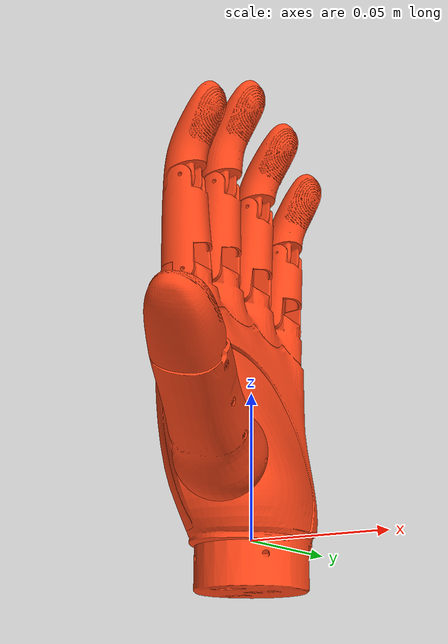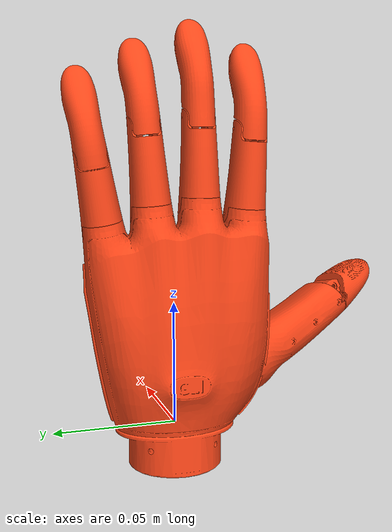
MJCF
<mujoco model="glite1-left">
  <default>
    <default class="robot">
      <default class="motor">
        <joint />
        <motor />
      </default>
      <default class="visual">
        <geom material="visualgeom" contype="0" conaffinity="0" group="2" />
      </default>
      <default class="collision">
        <geom material="collision_material" condim="3" contype="0" conaffinity="1" priority="1" group="1" solref="0.005 1" solimp="0.99 0.999 1e-05" friction="1 0.01 0.01" />
      </default>
    </default>
  </default>

  <compiler angle="radian" />

  <asset>
    <material name="" rgba="0 0 0 1" />
    <material name="default_material" rgba="0.7 0.7 0.7 1" />
    <material name="collision_material" rgba="1.0 0.28 0.1 0.9" />
    <mesh name="base_link.STL" file="ghand_lite1_system/meshes/hands/visual/left/base_link.STL" />
    <mesh name="THUMB_TMC_AA_link.STL" file="ghand_lite1_system/meshes/hands/visual/left/THUMB_TMC_AA_link.STL" />
    <mesh name="THUMB_TMC_FE_Link.STL" file="ghand_lite1_system/meshes/hands/visual/left/THUMB_TMC_FE_Link.STL" />
    <mesh name="THUMB_MCP_Link.STL" file="ghand_lite1_system/meshes/hands/visual/left/THUMB_MCP_Link.STL" />
    <mesh name="FF_MCP_Link.STL" file="ghand_lite1_system/meshes/hands/visual/left/FF_MCP_Link.STL" />
    <mesh name="FF_IP_Link.STL" file="ghand_lite1_system/meshes/hands/visual/left/FF_IP_Link.STL" />
    <mesh name="MF_MCP_Link.STL" file="ghand_lite1_system/meshes/hands/visual/left/MF_MCP_Link.STL" />
    <mesh name="MF_IP_Link.STL" file="ghand_lite1_system/meshes/hands/visual/left/MF_IP_Link.STL" />
    <mesh name="RF_MCP_Link.STL" file="ghand_lite1_system/meshes/hands/visual/left/RF_MCP_Link.STL" />
    <mesh name="RF_IP_Link.STL" file="ghand_lite1_system/meshes/hands/visual/left/RF_IP_Link.STL" />
    <mesh name="LF_MCP_Link.STL" file="ghand_lite1_system/meshes/hands/visual/left/LF_MCP_Link.STL" />
    <mesh name="LF_IP_Link.STL" file="ghand_lite1_system/meshes/hands/visual/left/LF_IP_Link.STL" />
  </asset>

  <worldbody>
    <body name="base_link" pos="0.00000000 0.00000000 0.00000000" quat="1 0 0 0" childclass="robot">
      <freejoint name="floating_base" />
      <geom name="base_link_collision" pos="0 0 0" quat="1.0 0.0 0.0 0.0" type="mesh" mesh="base_link.STL" class="collision" />
      <geom name="base_link_visual" pos="0 0 0" quat="1.0 0.0 0.0 0.0" material="" type="mesh" mesh="base_link.STL" class="visual" />
      <body name="THUMB_TMC_AA_link" pos="0.0027419 -0.015355 0.0407" quat="1.0 0.0 0.0 0.0">
        <joint name="THUMB_TMC_AA" type="hinge" ref="0.0" class="motor" range="0 1.5708" axis="0 0 1" />
        <inertial pos="0.0035105 -0.010768 -0.014524" quat="1.0 0.0 0.0 0.0" mass="0.0012466" diaginertia="2.4845e-08 4.8434e-08 4.2146e-08" />
        <geom name="THUMB_TMC_AA_link_collision" pos="0 0 0" quat="1.0 0.0 0.0 0.0" type="mesh" mesh="THUMB_TMC_AA_link.STL" class="collision" />
        <geom name="THUMB_TMC_AA_link_visual" pos="0 0 0" quat="1.0 0.0 0.0 0.0" material="" type="mesh" mesh="THUMB_TMC_AA_link.STL" class="visual" />
        <body name="THUMB_TMC_FE_Link" pos="0.0051244 -0.016734 -0.017602" quat="0.6976741184674369 0.43430336947717996 -0.4554193624533224 -0.3423807996720353">
          <joint name="THUMB_TMC_FE" type="hinge" ref="0.0" class="motor" range="0 0.8727" axis="0 0 1" />
          <inertial pos="0.0096916 -0.00049003 -3.0865E-05" quat="1.0 0.0 0.0 0.0" mass="0.021953" diaginertia="2.0396e-06 6.919e-06 6.7482e-06" />
          <geom name="THUMB_TMC_FE_Link_collision" pos="0 0 0" quat="1.0 0.0 0.0 0.0" type="mesh" mesh="THUMB_TMC_FE_Link.STL" class="collision" />
          <geom name="THUMB_TMC_FE_Link_visual" pos="0 0 0" quat="1.0 0.0 0.0 0.0" material="" type="mesh" mesh="THUMB_TMC_FE_Link.STL" class="visual" />
          <body name="THUMB_MCP_Link" pos="0.0555 0 0" quat="1.0 0.0 0.0 0.0">
            <joint name="THUMB_MCP" type="hinge" ref="0.0" class="motor" range="0 0.8727" axis="0 0 1" />
            <inertial pos="0.012263 0.0025949 -2.0051E-08" quat="1.0 0.0 0.0 0.0" mass="0.0052707" diaginertia="2.2466e-07 3.7914e-07 3.1935e-07" />
            <geom name="THUMB_MCP_Link_collision" pos="0 0 0" quat="1.0 0.0 0.0 0.0" type="mesh" mesh="THUMB_MCP_Link.STL" class="collision" />
            <geom name="THUMB_MCP_Link_visual" pos="0 0 0" quat="1.0 0.0 0.0 0.0" material="" type="mesh" mesh="THUMB_MCP_Link.STL" class="visual" />
          </body>
        </body>
      </body>
      <body name="FF_MCP_Link" pos="-0.0061775 -0.027065 0.08605" quat="0.5262867068448218 -0.4534783337784139 -0.5152754617762463 -0.5018674142472911">
        <joint name="FF_MCP" type="hinge" ref="0.0" class="motor" range="0 1.57" axis="0 0 1" />
        <inertial pos="0.016994 -0.0020693 3.0166E-06" quat="1.0 0.0 0.0 0.0" mass="0.0048788" diaginertia="2.3552e-07 6.8665e-07 6.4138e-07" />
        <geom name="FF_MCP_Link_collision" pos="0 0 0" quat="1.0 0.0 0.0 0.0" type="mesh" mesh="FF_MCP_Link.STL" class="collision" />
        <geom name="FF_MCP_Link_visual" pos="0 0 0" quat="1.0 0.0 0.0 0.0" material="" type="mesh" mesh="FF_MCP_Link.STL" class="visual" />
        <body name="FF_IP_Link" pos="0.0338 0 0" quat="1.0 0.0 0.0 0.0">
          <joint name="FF_IP" type="hinge" ref="0.0" class="motor" range="0 1.3962" axis="0 0 1" />
          <inertial pos="0.014502 0.0028707 5.7694E-09" quat="1.0 0.0 0.0 0.0" mass="0.0042877" diaginertia="1.3646e-07 3.5763e-07 4.0687e-07" />
          <geom name="FF_IP_Link_collision" pos="0 0 0" quat="1.0 0.0 0.0 0.0" type="mesh" mesh="FF_IP_Link.STL" class="collision" />
          <geom name="FF_IP_Link_visual" pos="0 0 0" quat="1.0 0.0 0.0 0.0" material="" type="mesh" mesh="FF_IP_Link.STL" class="visual" />
        </body>
      </body>
      <body name="MF_MCP_Link" pos="-0.0069842 -0.0083554 0.090606" quat="0.5043185442707441 -0.5043912386753092 -0.4955663541777313 -0.49564732709782283">
        <joint name="MF_MCP" type="hinge" ref="0.0" class="motor" range="0 1.57" axis="0 0 1" />
        <inertial pos="0.016995 -0.0020692 2.8772E-06" quat="1.0 0.0 0.0 0.0" mass="0.0048788" diaginertia="2.3552e-07 6.8668e-07 6.414e-07" />
        <geom name="MF_MCP_Link_collision" pos="0 0 0" quat="1.0 0.0 0.0 0.0" type="mesh" mesh="MF_MCP_Link.STL" class="collision" />
        <geom name="MF_MCP_Link_visual" pos="0 0 0" quat="1.0 0.0 0.0 0.0" material="" type="mesh" mesh="MF_MCP_Link.STL" class="visual" />
        <body name="MF_IP_Link" pos="0.0338 0 0" quat="1.0 0.0 0.0 0.0">
          <joint name="MF_IP" type="hinge" ref="0.0" class="motor" range="0 1.3962" axis="0 0 1" />
          <inertial pos="0.016937 0.0024934 3.8363E-06" quat="1.0 0.0 0.0 0.0" mass="0.0048125" diaginertia="1.5428e-07 5.2033e-07 5.7391e-07" />
          <geom name="MF_IP_Link_collision" pos="0 0 0" quat="1.0 0.0 0.0 0.0" type="mesh" mesh="MF_IP_Link.STL" class="collision" />
          <geom name="MF_IP_Link_visual" pos="0 0 0" quat="1.0 0.0 0.0 0.0" material="" type="mesh" mesh="MF_IP_Link.STL" class="visual" />
        </body>
      </body>
      <body name="RF_MCP_Link" pos="-0.0058769 0.010661 0.088033" quat="0.47282566318238656 -0.5340241677393435 -0.4996583665675581 -0.4915237504185098">
        <joint name="RF_MCP" type="hinge" ref="0.0" class="motor" range="0 1.57" axis="0 0 1" />
        <inertial pos="0.016995 -0.0020692 2.7501E-06" quat="1.0 0.0 0.0 0.0" mass="0.0048788" diaginertia="2.3552e-07 6.8667e-07 6.4139e-07" />
        <geom name="RF_MCP_Link_collision" pos="0 0 0" quat="1.0 0.0 0.0 0.0" type="mesh" mesh="RF_MCP_Link.STL" class="collision" />
        <geom name="RF_MCP_Link_visual" pos="0 0 0" quat="1.0 0.0 0.0 0.0" material="" type="mesh" mesh="RF_MCP_Link.STL" class="visual" />
        <body name="RF_IP_Link" pos="0.0338 0 0" quat="1.0 0.0 0.0 0.0">
          <joint name="RF_IP" type="hinge" ref="0.0" class="motor" range="0 1.3962" axis="0 0 1" />
          <inertial pos="0.014502 0.0028707 -1.1284E-08" quat="1.0 0.0 0.0 0.0" mass="0.0042877" diaginertia="1.3646e-07 3.5763e-07 4.0687e-07" />
          <geom name="RF_IP_Link_collision" pos="0 0 0" quat="1.0 0.0 0.0 0.0" type="mesh" mesh="RF_IP_Link.STL" class="collision" />
          <geom name="RF_IP_Link_visual" pos="0 0 0" quat="1.0 0.0 0.0 0.0" material="" type="mesh" mesh="RF_IP_Link.STL" class="visual" />
        </body>
      </body>
      <body name="LF_MCP_Link" pos="-0.0038799 0.029218 0.08175" quat="-0.4307981716959089 0.549189114135793 0.5229720488567121 0.489187579863612">
        <joint name="LF_MCP" type="hinge" ref="0.0" class="motor" range="0 1.57" axis="0 0 1" />
        <inertial pos="0.014735 -0.0022226 -1.307E-05" quat="1.0 0.0 0.0 0.0" mass="0.0045558" diaginertia="2.1792e-07 4.9298e-07 4.4423e-07" />
        <geom name="LF_MCP_Link_collision" pos="0 0 0" quat="1.0 0.0 0.0 0.0" type="mesh" mesh="LF_MCP_Link.STL" class="collision" />
        <geom name="LF_MCP_Link_visual" pos="0 0 0" quat="1.0 0.0 0.0 0.0" material="" type="mesh" mesh="LF_MCP_Link.STL" class="visual" />
        <body name="LF_IP_Link" pos="0.0285 0 0" quat="1.0 0.0 0.0 0.0">
          <joint name="LF_IP" type="hinge" ref="0.0" class="motor" range="0 1.3962" axis="0 0 1" />
          <inertial pos="0.014357 0.0012266 -5.8784E-08" quat="1.0 0.0 0.0 0.0" mass="0.0041612" diaginertia="1.24e-07 3.8754e-07 4.2284e-07" />
          <geom name="LF_IP_Link_collision" pos="0 0 0" quat="1.0 0.0 0.0 0.0" type="mesh" mesh="LF_IP_Link.STL" class="collision" />
          <geom name="LF_IP_Link_visual" pos="0 0 0" quat="1.0 0.0 0.0 0.0" material="" type="mesh" mesh="LF_IP_Link.STL" class="visual" />
        </body>
      </body>
      <site name="base_link_site" pos="0 0 0" quat="1 0 0 0" />
      <camera name="front_camera" mode="track" fovy="90.0" quat="4.329637285359678e-17 4.329637285359677e-17 0.7071067811865475 0.7071067811865476" pos="0.0 2.0 0.5" />
      <camera name="side_camera" mode="track" fovy="90.0" quat="-0.5 -0.4999999999999999 0.5 0.5000000000000001" pos="-2.0 0.0 0.5" />
    </body>
  </worldbody>

  <actuator>
    <motor name="THUMB_TMC_AA_ctrl" joint="THUMB_TMC_AA" class="motor" />
    <motor name="THUMB_TMC_FE_ctrl" joint="THUMB_TMC_FE" class="motor" />
    <motor name="THUMB_MCP_ctrl" joint="THUMB_MCP" class="motor" />
    <motor name="FF_MCP_ctrl" joint="FF_MCP" class="motor" />
    <motor name="FF_IP_ctrl" joint="FF_IP" class="motor" />
    <motor name="MF_MCP_ctrl" joint="MF_MCP" class="motor" />
    <motor name="MF_IP_ctrl" joint="MF_IP" class="motor" />
    <motor name="RF_MCP_ctrl" joint="RF_MCP" class="motor" />
    <motor name="RF_IP_ctrl" joint="RF_IP" class="motor" />
    <motor name="LF_MCP_ctrl" joint="LF_MCP" class="motor" />
    <motor name="LF_IP_ctrl" joint="LF_IP" class="motor" />
  </actuator>

  <contact>
    <exclude body1="base_link" body2="THUMB_TMC_AA_link" />
    <exclude body1="THUMB_TMC_AA_link" body2="THUMB_TMC_FE_Link" />
    <exclude body1="THUMB_TMC_FE_Link" body2="THUMB_MCP_Link" />
    <exclude body1="base_link" body2="FF_MCP_Link" />
    <exclude body1="FF_MCP_Link" body2="FF_IP_Link" />
    <exclude body1="base_link" body2="MF_MCP_Link" />
    <exclude body1="MF_MCP_Link" body2="MF_IP_Link" />
    <exclude body1="base_link" body2="RF_MCP_Link" />
    <exclude body1="RF_MCP_Link" body2="RF_IP_Link" />
    <exclude body1="base_link" body2="LF_MCP_Link" />
    <exclude body1="LF_MCP_Link" body2="LF_IP_Link" />
  </contact>

  <sensor>
    <framepos name="base_link_site_pos" objtype="site" objname="base_link_site" />
    <framequat name="base_link_site_quat" objtype="site" objname="base_link_site" />
    <framelinvel name="base_link_site_linvel" objtype="site" objname="base_link_site" />
    <frameangvel name="base_link_site_angvel" objtype="site" objname="base_link_site" />
    <velocimeter name="base_link_site_vel" site="base_link_site" />
  </sensor>
</mujoco>
